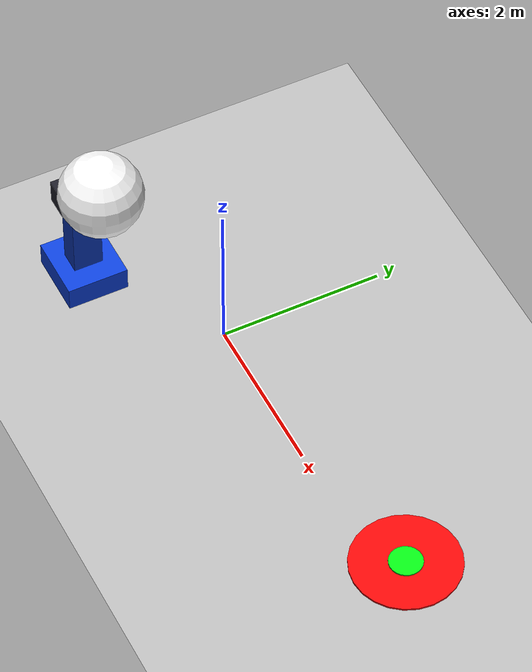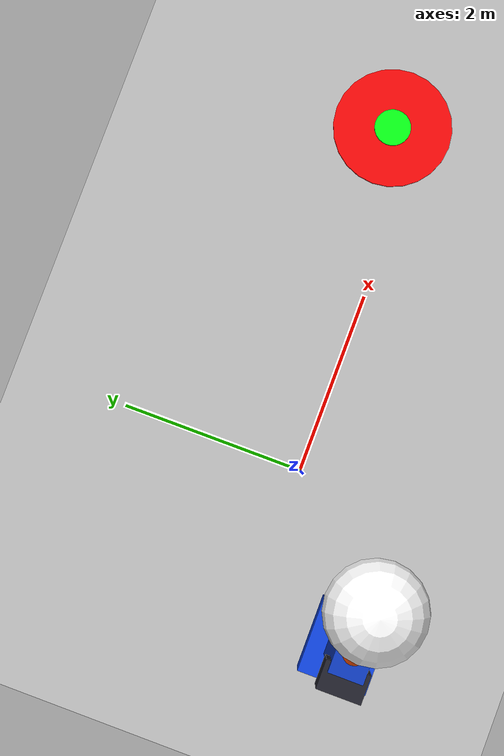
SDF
<?xml version='1.0' encoding='utf-8'?>
<sdf version="1.6">
  <world name="default">
    <gravity>0 0 -9.8</gravity>
    <physics name="default_physics" type="ode">
      <max_step_size>0.001</max_step_size>
      <real_time_factor>1.0</real_time_factor>
    </physics>
    <include>
      <uri>model://sun</uri>
    </include>
    <model name="ground_plane">
      <static>true</static>
      <link name="link">
        <collision name="collision">
          <geometry>
            <plane>
              <normal>0 0 1</normal>
              <size>20 20</size>
            </plane>
          </geometry>
        </collision>
        <visual name="visual">
          <geometry>
            <plane>
              <normal>0 0 1</normal>
              <size>20 20</size>
            </plane>
          </geometry>
          <material>
            <ambient>0.72 0.72 0.72 1</ambient>
            <diffuse>0.72 0.72 0.72 1</diffuse>
          </material>
        </visual>
      </link>
    </model>
    <model name="ai_ball_launcher">
      <static>true</static>
      <link name="launcher_body">
        <visual name="base_visual">
          <pose>-1.55 -1.0625 0.15 0 0 0</pose>
          <geometry>
            <box>
              <size>0.80 0.75 0.30</size>
            </box>
          </geometry>
          <material>
            <ambient>0.05 0.20 0.65 1</ambient>
            <diffuse>0.05 0.25 0.85 1</diffuse>
          </material>
        </visual>
        <visual name="support_visual">
          <pose>-1.55 -1.0625 0.80 0 0 0</pose>
          <geometry>
            <box>
              <size>0.28 0.36 1.30</size>
            </box>
          </geometry>
          <material>
            <ambient>0.04 0.16 0.52 1</ambient>
            <diffuse>0.05 0.22 0.72 1</diffuse>
          </material>
        </visual>
        <visual name="controller_visual">
          <pose>-1.73 -1.0625 1.25 0 0 0</pose>
          <geometry>
            <box>
              <size>0.30 0.46 0.30</size>
            </box>
          </geometry>
          <material>
            <ambient>0.08 0.08 0.10 1</ambient>
            <diffuse>0.12 0.12 0.16 1</diffuse>
          </material>
        </visual>
        <visual name="barrel_visual">
          <pose>-1.30 -1.0625 1.55 0 0.65 0</pose>
          <geometry>
            <cylinder>
              <radius>0.14</radius>
              <length>1.10</length>
            </cylinder>
          </geometry>
          <material>
            <ambient>0.75 0.22 0.02 1</ambient>
            <diffuse>1.00 0.32 0.03 1</diffuse>
          </material>
        </visual>
        <visual name="barrel_opening_visual">
          <pose>-0.963 -1.0625 1.989 0 0.65 0</pose>
          <geometry>
            <cylinder>
              <radius>0.105</radius>
              <length>0.015</length>
            </cylinder>
          </geometry>
          <material>
            <ambient>0.01 0.01 0.01 1</ambient>
            <diffuse>0.02 0.02 0.02 1</diffuse>
          </material>
        </visual>
      </link>
    </model>
    <model name="target_zone">
      <static>true</static>
      <pose>3.84514 0.34887 0 0 0 0</pose>
      <link name="target_link">
        <visual name="outer_target_visual">
          <pose>0 0 0.012 0 0 0</pose>
          <geometry>
            <cylinder>
              <radius>0.65</radius>
              <length>0.024</length>
            </cylinder>
          </geometry>
          <material>
            <ambient>0.65 0.02 0.02 1</ambient>
            <diffuse>0.95 0.03 0.03 1</diffuse>
          </material>
        </visual>
        <visual name="success_zone_visual">
          <pose>0 0 0.026 0 0 0</pose>
          <geometry>
            <cylinder>
              <radius>0.20</radius>
              <length>0.028</length>
            </cylinder>
          </geometry>
          <material>
            <ambient>0.01 0.60 0.05 1</ambient>
            <diffuse>0.02 1.00 0.08 1</diffuse>
          </material>
        </visual>
      </link>
    </model>
    <model name="unit_sphere">
      <pose>-0.951536 -1.06248 2.0 0 0 0</pose>
      <static>false</static>
      <link name="link">
        <inertial>
          <mass>1</mass>
          <inertia>
            <ixx>0.1</ixx>
            <iyy>0.1</iyy>
            <izz>0.1</izz>
            <ixy>0</ixy>
            <ixz>0</ixz>
            <iyz>0</iyz>
          </inertia>
        </inertial>
        <collision name="collision">
          <geometry>
            <sphere>
              <radius>0.5</radius>
            </sphere>
          </geometry>
        </collision>
        <visual name="visual">
          <geometry>
            <sphere>
              <radius>0.5</radius>
            </sphere>
          </geometry>
          <material>
            <ambient>0.92 0.92 0.92 1</ambient>
            <diffuse>1.00 1.00 1.00 1</diffuse>
          </material>
        </visual>
      </link>
    </model>
  </world>
</sdf>
